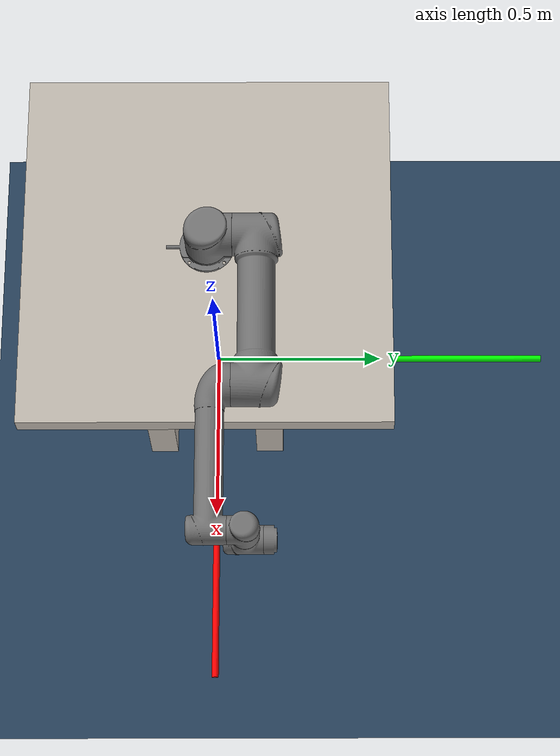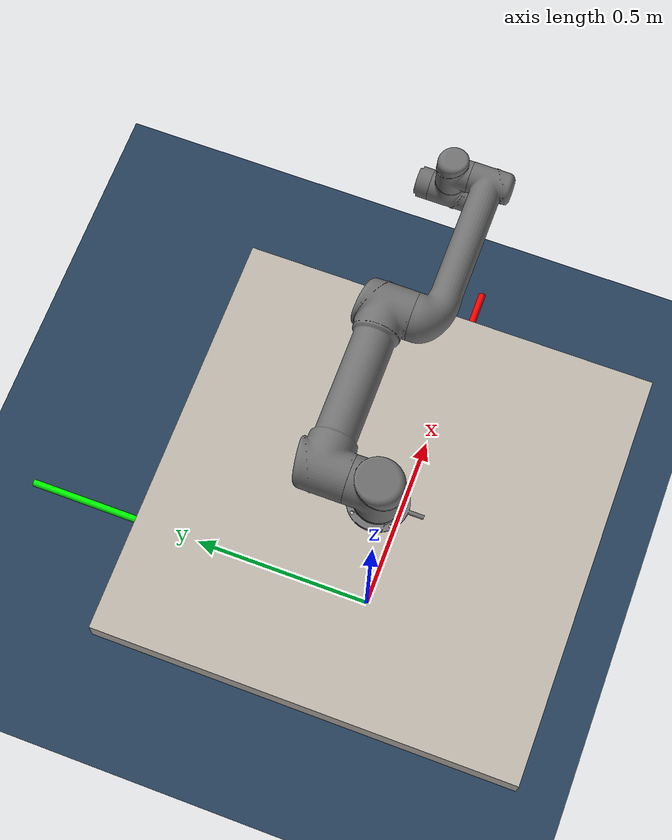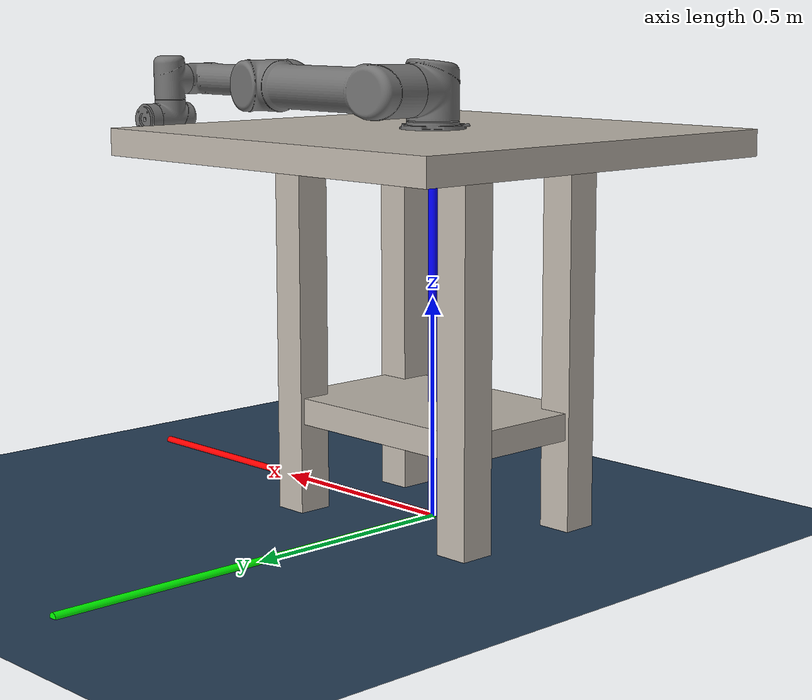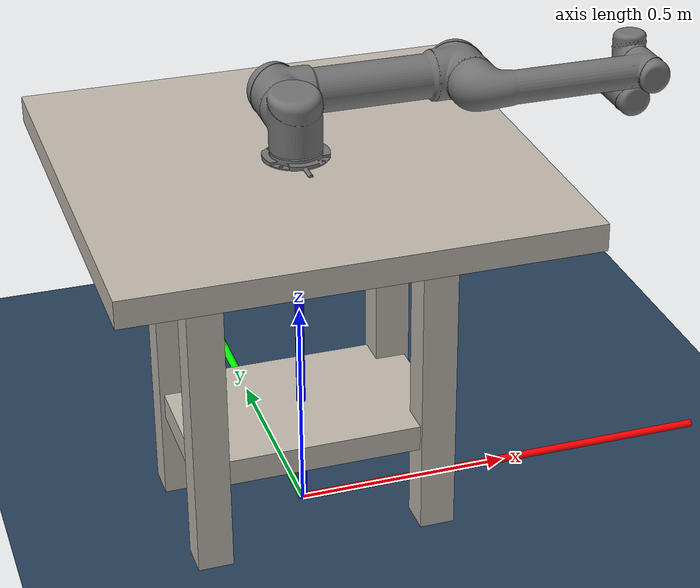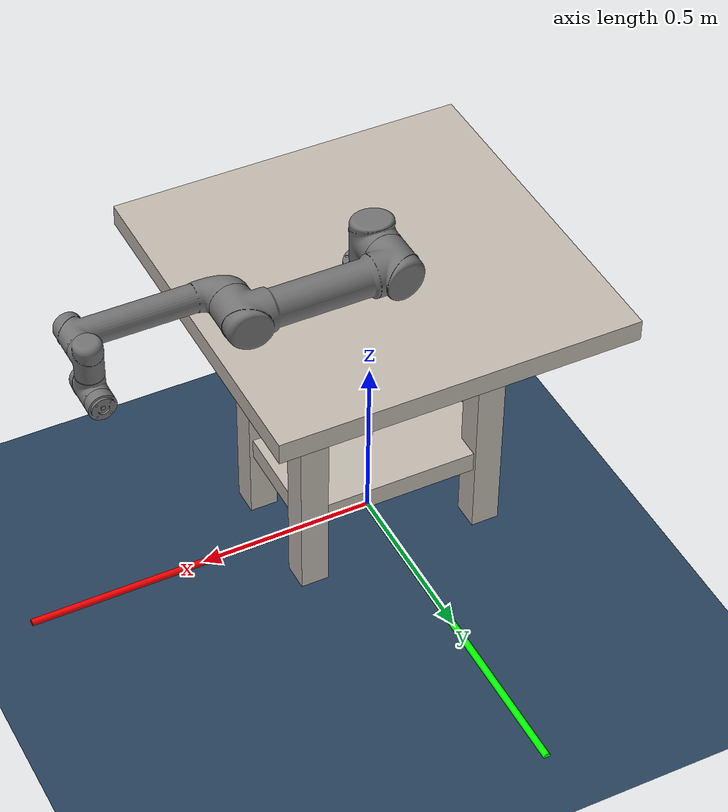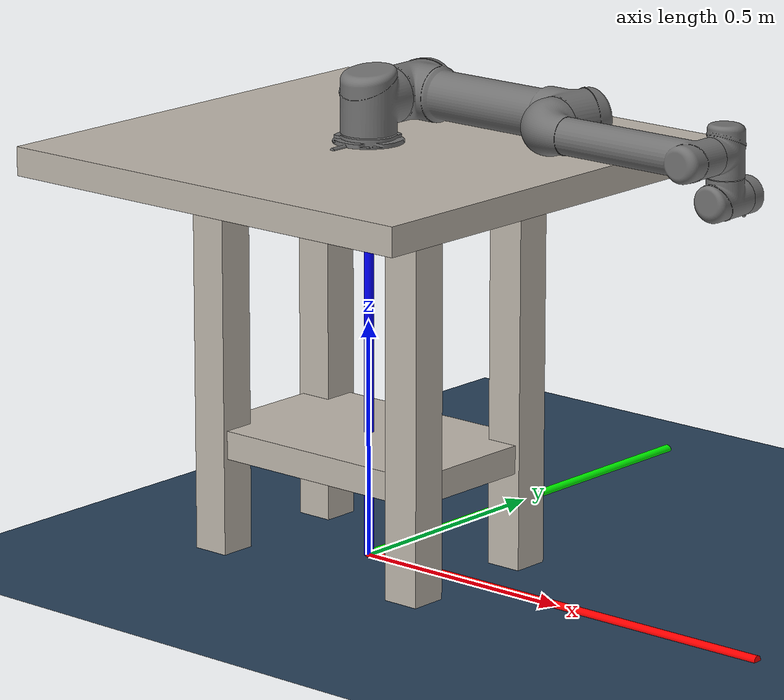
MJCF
<mujoco model="UR5Table">
    <compiler angle="radian"
              inertiafromgeom="true"
              texturedir="textures/"
              meshdir="mesh/visual/"/>
    <option timestep="0.01"
            iterations="10"
            tolerance="1e-10"
            impratio="20"/>
    <size njmax="600" nconmax="150" nstack="300000"/>

    <default>
        <site rgba="0.8 0.6 0.7 0.3" type="ellipsoid" group="3"/>
        <geom contype='1' conaffinity='1' condim='4'  margin="1e-3" solref=".01 1" solimp=".99 .99 .01" />
        <joint armature="0.01" damping=".1"/>
        <default class="UR5">
            <joint damping='65'/>
        </default>
        <default class="UR5e">
            <joint damping='45'/>
        </default>
        <default class="GRIPPER">
            <joint damping='5'/>
        </default>
    </default>

    <visual>
        <map fogstart="3" fogend="5" znear="0.05"/>
        <quality shadowsize="2048"/>
        <scale framelength="0.1"
               framewidth="0.005"
               contactwidth="0.1"
               contactheight="0.005"
               forcewidth="0.01"
               />
    </visual>

    <!--Assets-->
    <asset>
        <!--Meshes-->
        <mesh name="base"           file="base.stl"     />
        <mesh name="shoulder"       file="shoulder.stl" />
        <mesh name="upperarm"       file="upperarm.stl" />
        <mesh name="forearm"        file="forearm.stl"  />
        <mesh name="wrist1"         file="wrist1.stl"   />
        <mesh name="wrist2"         file="wrist2.stl"   />
        <mesh name="wrist3"         file="wrist3.stl"   />
        <!--Textures-->
        <texture name="ur5_tex"     type="2d"       builtin="flat" height="32" width="32" rgb1="0.45 0.45 0.45" />
        <texture name="gripper_tex" type="2d"       builtin="flat" height="32" width="32" rgb1="0.45 0.45 0.45" rgb2="0 0 0"/>
        <texture name="bench_tex"   type="2d"       builtin="flat" height="32" width="32" rgb1="0.7 0.7 0.7" />
        <texture name="sky_tex"     type="skybox"   builtin="gradient" width="100" height="100" rgb1="1 1 1" rgb2="0.3 0.3 0.8" />
        <texture name="texgeom"     type="cube"     builtin="flat" mark="cross" width="127" height="1278" rgb1="0.8 0.6 0.4" rgb2="0.8 0.6 0.4" markrgb="1 1 1" random="0.01" />
        <texture name="floor_tex"   type="2d"        builtin="checker" rgb1=".2 .3 .4" rgb2=".1 .2 .3" width="100" height="100" />
        <texture name="wood"        type="cube"     file="wood2.png"/>
        <texture name="metal"        type="cube"     file="metal2.png"/>
        <!--Materials-->
        <material name="ur5_mat"        texture="ur5_tex"   shininess="0.9" specular="0.75" reflectance="0.3"/>
        <material name="gripper_mat"    texture="gripper_tex"   shininess="0.9" specular="0.75" reflectance="0.4"/>
        <material name='floor_mat'      texture="floor_tex"  shininess="0.8" texrepeat="10 10" specular="0.7"  reflectance="0.5" />
        <material name='geom'           texture="texgeom"   texuniform="true" />
        <material name="bench_mat"      texture="metal"   shininess="0.1" specular="0.5" reflectance="0.2"/>
        <material name="tablecube"      texture="wood" rgba=".8 .8 .8 1"/>
    </asset>

    <!--Contacts-->
    <contact>
        <exclude body1="box_link" body2="base_link"/>
		<exclude body1="base_link" body2="shoulder_link"/>
		<exclude body1="shoulder_link" body2="upper_arm_link"/>
        <exclude body1="upper_arm_link" body2="forearm_link"/>
		<exclude body1="forearm_link" body2="wrist_1_link"/>
		<exclude body1="wrist_1_link" body2="wrist_2_link"/>
        <exclude body1="wrist_2_link" body2="wrist_3_link"/>
        <exclude body1="ee_link" body2="wrist_3_link"/>
    </contact>

    <!--MODEL DESCRIPTION-->
    <worldbody>
        <!--Lighting parameters-->
        <light name="light3" mode="targetbody" target="box_link" directional="true" pos="1 1 3" />
        <!--Floor Property-->
        <geom name='floor' material="floor_mat" pos='0 0 0' size='2.5 2.5 0.1'  type='plane' />

		<geom group="2" type="cylinder" contype="0" conaffinity="0" fromto="0 0 0 1 0 0" size="0.01" rgba="1 0 0 1"/>
		<geom group="2" type="cylinder" contype="0" conaffinity="0" fromto="0 0 0 0 1 0" size="0.01" rgba="0 1 0 1"/>
		<geom group="2" type="cylinder" contype="0" conaffinity="0" fromto="0 0 0 0 0 1" size="0.01" rgba="0 0 1 1"/>

        <!--Robot UR5-->
        <body name="box_link" pos="0 0 0.435">
            <geom size=".5 .5 .03" pos ="0 0 0.41" type="box" material="bench_mat"/>
            <geom size=".29 .19 .03" pos ="0 0 -0.2" type="box" material="bench_mat"/>
            <geom size=".04 .04 .435" pos =".26 .16 0" type="box" material="bench_mat"/>
            <geom size=".04 .04 .435" pos ="-.26 .16 0" type="box" material="bench_mat"/>
            <geom size=".04 .04 .435" pos =".26 -.16 0" type="box" material="bench_mat"/>
            <geom size=".04 .04 .435" pos ="-.26 -.16 0" type="box" material="bench_mat"/>
            <inertial pos="0 0 0" mass="1000" diaginertia="0 0 0" />
            <body name="base_link" pos="0 0 0.435">
                <inertial pos="0 0 0" quat="0.5 0.5 -0.5 0.5" mass="4" diaginertia="0.0072 0.00443333 0.00443333" />
                <geom type="mesh"  mesh="base" material="ur5_mat"/>
                <body name="shoulder_link" pos="0 0 0.089159">
                    <inertial pos="0 0 0" mass="3.7" diaginertia="0.0102675 0.0102675 0.00666" />
                    <joint name="shoulder_pan_joint" class="UR5" pos="0 0 0" axis="0 0 1" limited="true" range="-3.14159 3.14159" />
                    <geom type="mesh"  mesh="shoulder" material="ur5_mat"/>
                    <body name="upper_arm_link" pos="0 0.13585 0" quat="0.707107 0 0.707107 0">
                        <inertial pos="0 0 0.28" mass="8.393" diaginertia="0.226891 0.226891 0.0151074" />
                        <joint name="shoulder_lift_joint" class="UR5" pos="0 0 0" axis="0 1 0" limited="true" range="-3.14159 0" /> <!--Range= -3.14159 3.14159-->
                        <geom type="mesh"  mesh="upperarm" material="ur5_mat"/>
                        <body name="forearm_link" pos="0 -0.1197 0.425">
                            <inertial pos="0 0 0.25" mass="2.275" diaginertia="0.0494433 0.0494433 0.004095" />
                            <joint name="elbow_joint" class="UR5" pos="0 0 0" axis="0 1 0" limited="true" range="-3.14159 3.14159" />
                            <geom type="mesh"  mesh="forearm" material="ur5_mat"/>
                            <body name="wrist_1_link" pos="0 0 0.39225" quat="0.707107 0 0.707107 0">
                                <inertial pos="0 0 0" quat="0.5 0.5 -0.5 0.5" mass="1.219" diaginertia="0.21942 0.111173 0.111173" />
                                <joint name="wrist_1_joint" class="UR5e" pos="0 0 0" axis="0 1 0" limited="true" range="-3.14159 3.14159" />
                                <geom type="mesh"  mesh="wrist1" material="ur5_mat"/>
                                <body name="wrist_2_link" pos="0 0.093 0">
                                    <inertial pos="0 0 0" quat="0.5 0.5 -0.5 0.5" mass="1.219" diaginertia="0.21942 0.111173 0.111173" />
                                    <joint name="wrist_2_joint" class="UR5e" pos="0 0 0" axis="0 0 1" limited="true" range="-3.14159 3.14159" />
                                    <geom type="mesh"  mesh="wrist2" material="ur5_mat"/>
                                    <body name="wrist_3_link" pos="0 0 0.09465">
                                        <inertial pos="0 0 0" quat="0.5 0.5 -0.5 0.5" mass="0.1879" diaginertia="0.033822 0.0171365 0.0171365" />
                                        <joint name="wrist_3_joint" class="UR5e" pos="0 0 0" axis="0 1 0" limited="true" range="-3.14159 3.14159" />
                                        <geom type="mesh"  mesh="wrist3" material="ur5_mat"/>
                                        <body name="ee_link" pos="0 0.0823 0" quat="0.707107 0 0 0.707107">
                                            <inertial pos="-0.01 0 0" mass="0.001" diaginertia="1.66667e-08 1.66667e-08 1.66667e-08" />
                                            <geom size="0.005 0.005 0.005" pos="-0.01 0 0" type="box" />
											<site name="UR/EE" pos="0 0 0" quat="0 1 0 1" type="sphere" rgba="135 211 124 1" size="0.005"/>
                                        </body>
                                    </body>
                                </body>
                            </body>
                        </body>
                    </body>
                </body>
                <body name="base" pos="0 0 0" quat="1.7949e-09 0 0 -1">
                    <inertial pos="0 0 0" quat="1.7949e-09 0 0 -1" mass="0" diaginertia="0 0 0" />
                </body>
            </body>
        </body>
    </worldbody>

    <!--ACTUATORS-->
    <actuator>
        <!--UR5-->

        <motor name='shoulder_pan_T' ctrllimited="true" ctrlrange="-2 2" joint='shoulder_pan_joint' gear="101"/> <!--range -150 150-->
        <motor name='shoulder_lift_T' ctrllimited="true" ctrlrange="-2 2" joint='shoulder_lift_joint' gear="101"/>
        <motor name='forearm_T' ctrllimited="true" ctrlrange="-2 2" joint='elbow_joint' gear="101" />
        <motor name='wrist_1_T' ctrllimited="true" ctrlrange="-1 1" joint='wrist_1_joint' gear="101"/>  <!--range -28 28-->
        <motor name='wrist_2_T' ctrllimited="true" ctrlrange="-1 1" joint='wrist_2_joint' gear="101"/>
        <motor name='wrist_3_T' ctrllimited="true" ctrlrange="-1 1" joint='wrist_3_joint' gear="101"/>

    </actuator>

    <sensor>

		<jointpos name="UR/pos_Joint1" joint="shoulder_pan_joint" />
		<jointpos name="UR/pos_Joint2" joint="shoulder_lift_joint" />
		<jointpos name="UR/pos_Joint3" joint="elbow_joint" />
		<jointpos name="UR/pos_Joint4" joint="wrist_1_joint" />
		<jointpos name="UR/pos_Joint5" joint="wrist_2_joint" />
		<jointpos name="UR/pos_Joint6" joint="wrist_3_joint" />

		<jointvel name="UR/vel_Joint1" joint="shoulder_pan_joint" />
		<jointvel name="UR/vel_Joint2" joint="shoulder_lift_joint" />
		<jointvel name="UR/vel_Joint3" joint="elbow_joint" />
		<jointvel name="UR/vel_Joint4" joint="wrist_1_joint" />
		<jointvel name="UR/vel_Joint5" joint="wrist_2_joint" />
		<jointvel name="UR/vel_Joint6" joint="wrist_3_joint" />

		<framepos name="UR/EE_pos" objtype="site" objname="UR/EE" />
		<framequat name="UR/EE_quat" objtype="site" objname="UR/EE" />

		<force name="TcpF" site="UR/EE" />
		<torque name="TcpT" site="UR/EE"/>

    </sensor>
</mujoco>
